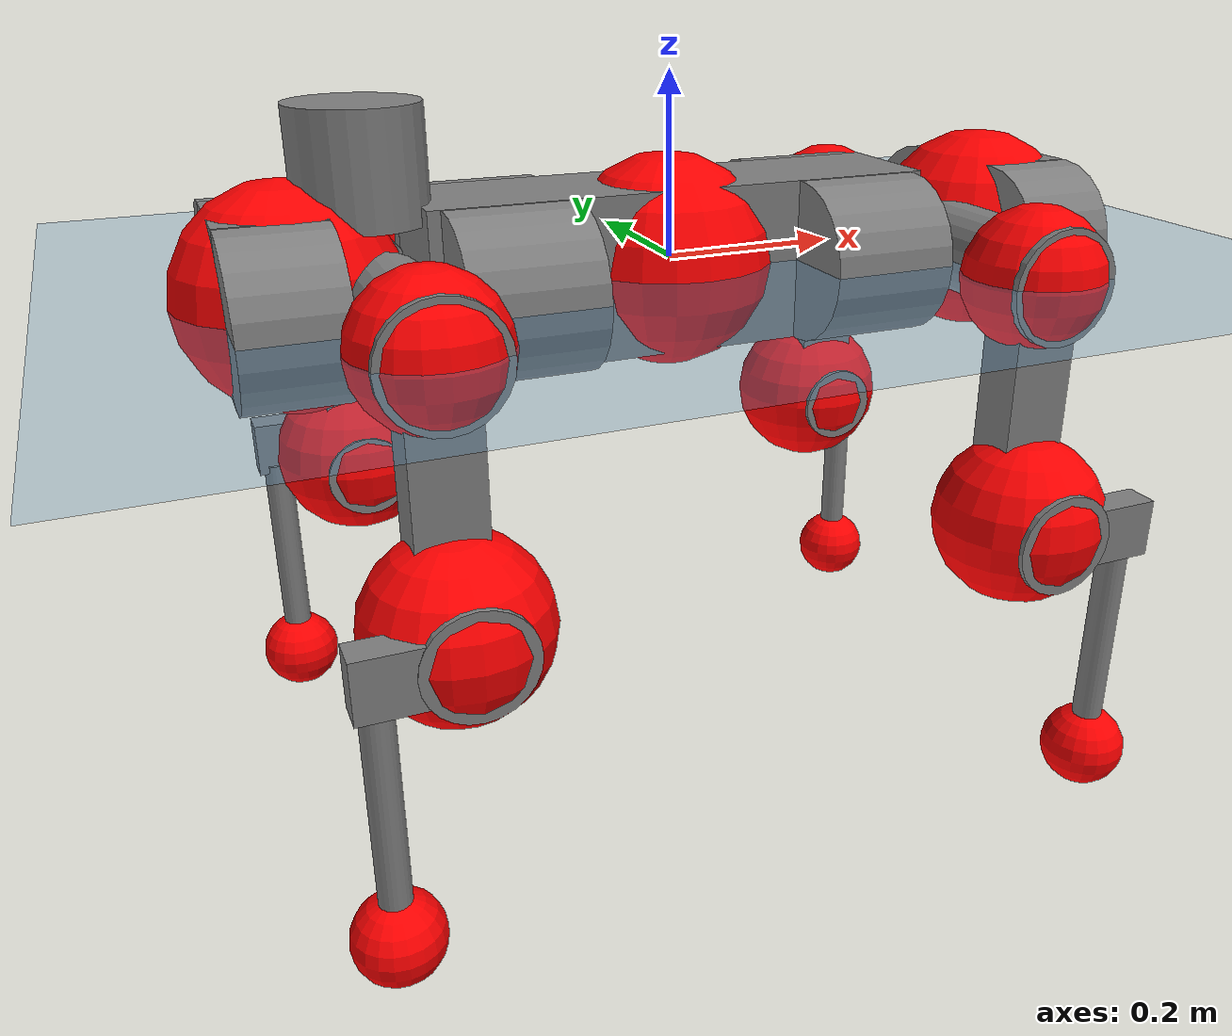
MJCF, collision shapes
<mujoco model="anymal_c">
  <compiler angle="radian" assetdir="assets" balanceinertia="true" inertiafromgeom="false"/>

  <option timestep="0.005" density="1.2" viscosity="2e-05"/>

  <size nkey="1"/>

  <visual>
    <quality shadowsize="8192"/>
    <map shadowclip="0.5"/>
  </visual>

  <default>
    <default class="/">
      <material specular="0" shininess="0.25"/>
      <geom contype="0" conaffinity="0" group="1" solref="-1000 -80"/>
      <site size="0.01 0.005 0.005" group="5"/>
      <general forcelimited="true" forcerange="-80 80" biastype="affine" gainprm="80" biasprm="0 -80 -2"/>
      <default class="anymal_c">
        <joint armature="0.01" damping="0.01" frictionloss="0.1"/>
        <default class="visual">
          <geom type="mesh" group="2"/>
          <default class="visual_zflip"/>
        </default>
        <default class="collision">
          <geom type="cylinder" group="3"/>
          <default class="foot">
            <geom size="0.03 0 0" type="sphere" condim="6" priority="1" friction="0.8 0.02 0.01" solimp="0.015 1 0.03"/>
          </default>
        </default>
      </default>
      <default class="reward_collision_sphere">
        <geom group="5" rgba="1 0 0 1"/>
      </default>
    </default>
  </default>

  <asset>
    <texture type="skybox" colorspace="auto" name="//unnamed_texture_0" builtin="gradient" rgb1="0.95 0.95 0.95" rgb2="0.95 0.95 0.95" width="100" height="600"/>
    <texture type="2d" colorspace="auto" name="texplane" builtin="checker" rgb1="0.345 0.575 0.748" rgb2="0.345 0.575 0.748" markrgb="1 1 1" width="512" height="512"/>
    <texture type="2d" colorspace="linear" name="base" file="base.png"/>
    <texture type="2d" colorspace="linear" name="top_shell" file="top_shell.png"/>
    <texture type="2d" colorspace="linear" name="bottom_shell" file="bottom_shell.png"/>
    <texture type="2d" colorspace="linear" name="remote" file="remote.png"/>
    <texture type="2d" colorspace="linear" name="hatch" file="hatch.png"/>
    <texture type="2d" colorspace="linear" name="handle" file="handle.png"/>
    <texture type="2d" colorspace="linear" name="face" file="face.png"/>
    <texture type="2d" colorspace="linear" name="battery" file="battery.png"/>
    <texture type="2d" colorspace="linear" name="lidar_cage" file="lidar_cage.png"/>
    <texture type="2d" colorspace="linear" name="depth_camera" file="depth_camera.png"/>
    <texture type="2d" colorspace="linear" name="wide_angle_camera" file="wide_angle_camera.png"/>
    <texture type="2d" colorspace="linear" name="lidar" file="lidar.png"/>
    <texture type="2d" colorspace="linear" name="drive" file="drive.png"/>
    <texture type="2d" colorspace="linear" name="hip_l" file="hip_l.png"/>
    <texture type="2d" colorspace="linear" name="shank_l" file="shank_l.png"/>
    <texture type="2d" colorspace="linear" name="foot" file="foot.png"/>
    <texture type="2d" colorspace="linear" name="thigh" file="thigh.png"/>
    <texture type="2d" colorspace="linear" name="shank_r" file="shank_r.png"/>
    <texture type="2d" colorspace="linear" name="hip_r" file="hip_r.png"/>
    <material name="MatPlane" class="/" texture="texplane" texuniform="true" texrepeat="2 2" specular="0.9" shininess="0.5"/>
    <material name="black_plastic" class="/" rgba="0.007 0.007 0.007 1"/>
    <material name="green" class="/" rgba="0.052 0.178 0.033 1"/>
    <material name="red" class="/" rgba="0.178 0.006 0.005 1"/>
    <material name="yellow" class="/" rgba="0.178 0.119 0.006 1"/>
    <material name="lwl" class="/" rgba="0.8 0.8 0.8 1"/>
    <material name="base" class="/" texture="base"/>
    <material name="top_shell" class="/" texture="top_shell"/>
    <material name="bottom_shell" class="/" texture="bottom_shell"/>
    <material name="hip_l" class="/" texture="hip_l"/>
    <material name="thigh" class="/" texture="thigh"/>
    <material name="shank_l" class="/" texture="shank_l"/>
    <material name="foot" class="/" texture="foot"/>
    <material name="hip_r" class="/" texture="hip_r"/>
    <material name="shank" class="/" texture="shank_r"/>
    <material name="hatch" class="/" texture="hatch"/>
    <material name="remote" class="/" texture="remote"/>
    <material name="handle" class="/" texture="handle"/>
    <material name="face" class="/" texture="face"/>
    <material name="depth_camera" class="/" texture="depth_camera"/>
    <material name="wide_angle_camera" class="/" texture="wide_angle_camera"/>
    <material name="battery" class="/" texture="battery"/>
    <material name="lidar_cage" class="/" texture="lidar_cage"/>
    <material name="lidar" class="/" texture="lidar"/>
    <material name="drive" class="/" texture="drive"/>
    <mesh name="base_0" class="/" file="base_0.obj"/>
    <mesh name="base_1" class="/" file="base_1.obj"/>
    <mesh name="base_2" class="/" file="base_2.obj"/>
    <mesh name="base_3" class="/" file="base_3.obj"/>
    <mesh name="base_4" class="/" file="base_4.obj"/>
    <mesh name="base_5" class="/" file="base_5.obj"/>
    <mesh name="top_shell" class="/" file="top_shell.obj"/>
    <mesh name="bottom_shell" class="/" file="bottom_shell.obj"/>
    <mesh name="remote" class="/" file="remote.obj"/>
    <mesh name="handle" class="/" file="handle.obj"/>
    <mesh name="face" class="/" file="face.obj"/>
    <mesh name="wide_angle_camera" class="/" file="wide_angle_camera.obj"/>
    <mesh name="depth_camera" class="/" file="depth_camera.obj"/>
    <mesh name="battery" class="/" file="battery.obj"/>
    <mesh name="lidar_cage" class="/" file="lidar_cage.obj"/>
    <mesh name="lidar" class="/" file="lidar.obj"/>
    <mesh name="drive" class="/" file="drive.obj"/>
    <mesh name="hip_l" class="/" file="hip_l.obj"/>
    <mesh name="thigh" class="/" file="thigh.obj"/>
    <mesh name="shank_l" class="/" file="shank_l.obj"/>
    <mesh name="foot" class="/" file="foot.obj"/>
    <mesh name="hip_r" class="/" file="hip_r.obj"/>
    <mesh name="hatch" class="/" file="hatch.obj"/>
    <mesh name="shank_r" class="/" file="shank_r.obj"/>
  </asset>

  <worldbody>
    <geom name="floor" class="/" size="100 100 0.125" type="plane" group="0" material="MatPlane"/>
    <light name="toplight_shadow" class="/" pos="0 0 5" dir="0.0990148 0.0990148 -0.990148" type="directional" ambient="0.04 0.04 0.04" diffuse="0.55 0.55 0.55" specular="0.12 0.12 0.12"/>
    <light name="toplight_fill" class="/" pos="0 0 5" dir="0.0990148 0.0990148 -0.990148" type="directional" castshadow="false" ambient="0.04 0.04 0.04" diffuse="0.3 0.3 0.3" specular="0.08 0.08 0.08"/>
    <body name="trunk" childclass="anymal_c" pos="-0.00309075 -0.000207477 -0.00226089" quat="1 0.000542417 0.000739971 0.000158255">
      <inertial pos="0.00471401 0.00205696 0.0436737" quat="0.493878 0.496395 0.507145 0.502475" mass="19.113" diaginertia="0.415446 0.882202 0.178034"/>
      <joint name="//unnamed_joint_0" type="free" armature="0" damping="0" frictionloss="0"/>
      <geom name="//unnamed_geom_1" class="visual" material="green" mesh="base_0"/>
      <geom name="//unnamed_geom_2" class="visual" material="yellow" mesh="base_1"/>
      <geom name="//unnamed_geom_3" class="visual" material="red" mesh="base_2"/>
      <geom name="//unnamed_geom_4" class="visual" material="black_plastic" mesh="base_3"/>
      <geom name="//unnamed_geom_5" class="visual" material="lwl" mesh="base_4"/>
      <geom name="//unnamed_geom_6" class="visual" material="base" mesh="base_5"/>
      <geom name="trunk_1" class="collision" size="0.283403 0.0684077 0.0879528" type="box"/>
      <geom name="trunk_2" class="collision" size="0.0879528 0.0708509" pos="0.198633 0.0747576 0" quat="0.707107 0 0.707107 0"/>
      <geom name="trunk_3" class="collision" size="0.0879528 0.0708509" pos="-0.198633 0.0747576 0" quat="0.707107 0 0.707107 0"/>
      <geom name="trunk_4" class="collision" size="0.0879528 0.0708509" pos="0.198633 -0.0747576 0" quat="0.707107 0 0.707107 0"/>
      <geom name="trunk_5" class="collision" size="0.0879528 0.0708509" pos="-0.198633 -0.0747576 0" quat="0.707107 0 0.707107 0"/>
      <geom name="//unnamed_geom_12" class="visual" material="top_shell" mesh="top_shell"/>
      <geom name="//unnamed_geom_13" class="visual" material="bottom_shell" mesh="bottom_shell"/>
      <geom name="//unnamed_geom_14" class="visual" material="remote" mesh="remote"/>
      <geom name="//unnamed_geom_15" class="visual" material="handle" mesh="handle"/>
      <geom name="//unnamed_geom_16" class="visual" pos="0.378544 0 0" quat="1 0 0 0" material="face" mesh="face"/>
      <geom name="trunk_6" class="collision" size="0.0537489 0.0684077 0.0879528" pos="0.428773 0 0" type="box"/>
      <geom name="//unnamed_geom_18" class="collision" size="0.0879528 0.0537489" pos="0.428773 0.0747576 0" quat="0.707107 0 0.707107 0"/>
      <geom name="//unnamed_geom_19" class="collision" size="0.0879528 0.0537489" pos="0.428773 -0.0747576 0" quat="0.707107 0 0.707107 0"/>
      <geom name="//unnamed_geom_20" class="visual" pos="0.421605 0 -0.0280391" quat="0.965926 0 0.258819 0" material="depth_camera" mesh="depth_camera"/>
      <geom name="//unnamed_geom_21" class="visual" pos="0.468499 0 0.0142296" material="wide_angle_camera" mesh="wide_angle_camera"/>
      <geom name="//unnamed_geom_22" class="visual_zflip" pos="-0.378544 0 0" quat="0 0 0 1" material="face" mesh="face"/>
      <geom name="trunk_7" class="collision" size="0.0537489 0.0684077 0.0879528" pos="-0.428773 0 0" quat="0 0 0 1" type="box"/>
      <geom name="//unnamed_geom_24" class="collision" size="0.0879528 0.0537489" pos="-0.428773 -0.0747576 0" quat="0 -0.707107 0 0.707107"/>
      <geom name="//unnamed_geom_25" class="collision" size="0.0879528 0.0537489" pos="-0.428773 0.0747576 0" quat="0 -0.707107 0 0.707107"/>
      <geom name="//unnamed_geom_26" class="visual" pos="-0.421605 0 -0.0280391" quat="0 -0.258819 0 0.965926" material="depth_camera" mesh="depth_camera"/>
      <geom name="//unnamed_geom_27" class="visual_zflip" pos="-0.468499 0 0.0142296" quat="0 0 0 1" material="wide_angle_camera" mesh="wide_angle_camera"/>
      <geom name="//unnamed_geom_28" class="visual" material="battery" mesh="battery"/>
      <geom name="//unnamed_geom_29" class="visual" pos="0 0.0836883 0.0273298" quat="0.683013 -0.183013 0.183013 0.683013" material="depth_camera" mesh="depth_camera"/>
      <geom name="//unnamed_geom_30" class="visual" pos="0 -0.0836883 0.0273298" quat="0.683013 0.183013 0.183013 -0.683013" material="depth_camera" mesh="depth_camera"/>
      <geom name="//unnamed_geom_31" class="visual" pos="-0.332425 0 0.0698647" quat="1 0 0 0" material="lidar_cage" mesh="lidar_cage"/>
      <geom name="trunk_8" class="collision" size="0.0684077 0.0586352" pos="-0.332425 0 0.126897"/>
      <geom name="//unnamed_geom_33" class="visual" pos="-0.332425 6.07819e-05 0.135167" quat="0.707107 0 0 -0.707107" material="lidar" mesh="lidar"/>
      <geom name="//unnamed_geom_34" class="visual" pos="0.273885 0.111027 2.02561e-09" quat="0.258819 0.965926 0 0" material="drive" mesh="drive"/>
      <geom name="//unnamed_geom_35" class="visual" pos="0.273885 -0.111027 -2.02561e-09" quat="0.258819 -0.965926 0 0" material="drive" mesh="drive"/>
      <geom name="//unnamed_geom_36" class="visual" pos="-0.273885 0.111027 -2.02561e-09" quat="0 0 0.965926 -0.258819" material="drive" mesh="drive"/>
      <geom name="//unnamed_geom_37" class="visual" pos="-0.273885 -0.111027 2.02561e-09" quat="0 0 -0.965926 -0.258819" material="drive" mesh="drive"/>
      <geom name="//unnamed_geom_38" class="visual" pos="0.105938 0 0.0693894" quat="1 0 0 0" material="hatch" mesh="hatch"/>
      <geom name="//unnamed_geom_39" class="reward_collision_sphere" size="0.11727"/>
      <geom name="//unnamed_geom_40" class="reward_collision_sphere" size="0.11727" pos="0.410964 0 0"/>
      <geom name="//unnamed_geom_41" class="reward_collision_sphere" size="0.11727" pos="-0.410964 0 0"/>
      <site name="imu" pos="0.224863 0.0181749 0.0365044" size="0.00977253"/>
      <camera name="track" pos="0 -2.13593 0" quat="0.707107 0.707107 0 0" mode="trackcom"/>
      <camera name="ego_camera" pos="0.410964 0 -0.0380216" quat="-0.5 -0.5 0.5 0.5"/>
      <body name="LF_HIP" pos="0.27434 0.108941 0.00175363" quat="0.259467 0.965752 0.000201009 -0.00100637">
        <inertial pos="0.0543852 -0.0166191 -0.00922995" quat="-0.125119 0.709888 -0.132452 0.680339" mass="2.59581" diaginertia="0.00367809 0.00721102 0.00255537"/>
        <joint name="LF_HAA" pos="0 0 0" axis="0.999904 -0.0134818 0.0032385" range="-0.7728 0.462543" armature="0.0100147" damping="0.0210892" frictionloss="0.0981071"/>
        <geom name="//unnamed_geom_42" class="visual" pos="0 0.000119157 -1.95715e-05" quat="0.258819 -0.965926 0 0" material="hip_l" mesh="hip_l"/>
        <geom name="//unnamed_geom_43" class="visual" pos="0.0547039 -0.0682808 -0.0385534" quat="0.183013 -0.683013 0.683013 0.183013" material="drive" mesh="drive"/>
        <geom name="//unnamed_geom_44" class="collision" size="0.0488627 0.0684077" pos="0.0547039 -0.0127727 -0.00656348" quat="-0.353553 -0.612372 0.612372 -0.353553"/>
        <body name="LF_THIGH" pos="0.0571059 -0.0784806 -0.0376952" quat="0.183247 -0.683093 0.682827 0.18317">
          <inertial pos="0.0288388 -0.00112972 -0.231849" quat="0.993242 -0.00556294 -0.0800288 0.0838678" mass="2.84774" diaginertia="0.019621 0.0414336 0.00308893"/>
          <joint name="LF_HFE" pos="0 0 0" axis="0.999944 -0.00477114 0.00949633" stiffness="0.0165124" range="-3.0991 3.13415" armature="0.00857797" damping="0.00234468" frictionloss="0.0847321"/>
          <geom name="//unnamed_geom_45" class="visual" pos="-0.00307815 -4.85044e-06 0" quat="0.707107 0 0 -0.707107" material="thigh" mesh="thigh"/>
          <geom name="//unnamed_geom_46" class="collision" size="0.0635215 0.0390901" pos="0.0365302 0 0" quat="0.5 0.5 -0.5 -0.5"/>
          <geom name="//unnamed_geom_47" class="collision" size="0.036647 0.0293176 0.1381" pos="0.0273976 0 -0.134325" quat="0.707107 0 0 -0.707107" type="box"/>
          <geom name="//unnamed_geom_48" class="visual" pos="0.0915994 0 -0.270904" quat="1 0 0 0" material="drive" mesh="drive"/>
          <geom name="//unnamed_geom_49" class="collision" size="0.0488627 0.0684077" pos="0.0276716 0 -0.270904" quat="0.707107 0 0.707107 0"/>
          <geom name="//unnamed_geom_50" class="reward_collision_sphere" size="0.0781803" pos="0.0228314 0 0"/>
          <body name="LF_SHANK" pos="0.0933024 0.00163511 -0.271408" quat="1 0.000609796 0.000216375 -0.000249833">
            <inertial pos="0.005414 -0.0646453 -0.075719" quat="0.99203 -0.124704 -0.00557752 -0.0171369" mass="0.546853" diaginertia="0.00606175 0.0124717 0.000859452"/>
            <joint name="LF_KFE" pos="0 0 0" axis="0.999915 -0.000916864 0.0130436" stiffness="0.00486946" range="-3.10571 3.13706" armature="0.0106916" damping="0.0085746" frictionloss="0.107382"/>
            <geom name="//unnamed_geom_51" class="visual" pos="-0.00100372 -0.00535187 0" quat="0.707107 0 0 -0.707107" material="shank_l" mesh="shank_l"/>
            <geom name="LF_kfe_act" class="collision" size="0.0586352 0.0195451" pos="0.0182651 0 0" quat="0.5 0.5 -0.5 -0.5"/>
            <geom name="//unnamed_geom_53" class="collision" size="0.0561911 0.0329823 0.0185678" pos="0.0182651 -0.061407 0" quat="0.5 0.5 -0.5 -0.5" type="box"/>
            <geom name="//unnamed_geom_54" class="visual" pos="0.0119182 -0.0956523 -0.321254" quat="0.382683 0 0 -0.92388" material="foot" mesh="foot"/>
            <geom name="LF_calf" class="collision" size="0.0171019 0.138039" pos="0.011918 -0.0939276 -0.160627" quat="0.707107 0 0 -0.707107"/>
            <geom name="LF_foot" class="foot" size="0.0225939" pos="0.011918 -0.0939276 -0.299867" quat="0.707107 0 0 -0.707107"/>
            <geom name="//unnamed_geom_57" class="reward_collision_sphere" size="0.0977253" pos="-0.0456627 0 0"/>
            <geom name="//unnamed_geom_58" class="reward_collision_sphere" size="0.0488627" pos="0.011918 -0.0939276 -0.299867"/>
            <site name="LF_foot" class="foot" pos="0.011918 -0.0939276 -0.299867" quat="0.707107 0 0 -0.707107" size="0.00977253"/>
          </body>
        </body>
      </body>
      <body name="RF_HIP" pos="0.276332 -0.110455 0.00198085" quat="0.258844 -0.965919 -7.76816e-06 -7.00073e-06">
        <inertial pos="0.0538965 0.0176496 -0.00781692" quat="0.136392 0.678716 0.130617 0.709705" mass="2.61395" diaginertia="0.00362848 0.00667003 0.00246156"/>
        <joint name="RF_HAA" pos="0 0 0" axis="0.999963 -0.00159448 -0.00847065" range="-0.440064 0.730459" armature="0.0109747" damping="0.0128236" frictionloss="0.101361"/>
        <geom name="//unnamed_geom_59" class="visual" pos="0 -0.000119156 -1.95714e-05" quat="0.258819 0.965926 0 0" material="hip_r" mesh="hip_r"/>
        <geom name="//unnamed_geom_60" class="visual" pos="0.0547039 0.0682808 -0.0385534" quat="0.183013 0.683013 0.683013 -0.183013" material="drive" mesh="drive"/>
        <geom name="//unnamed_geom_61" class="collision" size="0.0488627 0.0684077" pos="0.0547039 0.0127727 -0.00656348" quat="-0.353553 0.612372 0.612372 0.353553"/>
        <body name="RF_THIGH" pos="0.0546024 0.0805809 -0.0408821" quat="0.183001 0.683153 0.682884 -0.182979">
          <inertial pos="0.0300086 -0.000148494 -0.233938" quat="0.992727 -0.00598838 -0.0767841 0.092533" mass="2.83394" diaginertia="0.0185404 0.0390305 0.00313572"/>
          <joint name="RF_HFE" pos="0 0 0" axis="0.999991 0.00415524 -0.0006222" range="-3.17406 3.13457" armature="0.00961002" damping="0.00167629" frictionloss="0.109478"/>
          <geom name="//unnamed_geom_62" class="visual" pos="-0.00307815 -4.85044e-06 0" quat="0.707107 0 0 -0.707107" material="thigh" mesh="thigh"/>
          <geom name="//unnamed_geom_63" class="collision" size="0.0635215 0.0390901" pos="0.0365302 0 0" quat="0.5 0.5 0.5 0.5"/>
          <geom name="//unnamed_geom_64" class="collision" size="0.036647 0.0293176 0.1381" pos="0.0273976 0 -0.134325" quat="0.707107 0 0 0.707107" type="box"/>
          <geom name="//unnamed_geom_65" class="visual" pos="0.0915994 0 -0.270904" quat="1 0 0 0" material="drive" mesh="drive"/>
          <geom name="//unnamed_geom_66" class="collision" size="0.0488627 0.0684077" pos="0.0276716 0 -0.270904" quat="0.707107 0 0.707107 0"/>
          <geom name="//unnamed_geom_67" class="reward_collision_sphere" size="0.0781803" pos="0.0228314 0 0"/>
          <body name="RF_SHANK" pos="0.091025 0.000284 -0.273792" quat="1 8.88345e-05 -2.29197e-05 3.39152e-05">
            <inertial pos="0.00580899 0.0654491 -0.0773501" quat="0.993702 0.109548 -0.000235201 0.0235538" mass="0.553154" diaginertia="0.0064358 0.0128317 0.000865049"/>
            <joint name="RF_KFE" pos="0 0 0" axis="0.99993 -0.00762826 -0.0090314" stiffness="0.00145478" range="-3.1163 3.15234" armature="0.00844647" damping="0.00802439" frictionloss="0.0852367"/>
            <geom name="//unnamed_geom_68" class="visual" pos="-0.00100371 0.00535186 0" quat="0.707107 0 0 0.707107" material="shank" mesh="shank_r"/>
            <geom name="RF_kfe_act" class="collision" size="0.0586352 0.0195451" pos="0.0182651 0 0" quat="0.5 0.5 0.5 0.5"/>
            <geom name="//unnamed_geom_70" class="collision" size="0.0561911 0.0329823 0.0185678" pos="0.0182651 0.061407 0" quat="0.5 0.5 0.5 0.5" type="box"/>
            <geom name="//unnamed_geom_71" class="visual" pos="0.0119177 0.0956523 -0.321254" quat="0.382683 0 0 0.92388" material="foot" mesh="foot"/>
            <geom name="RF_calf" class="collision" size="0.0171019 0.138039" pos="0.011918 0.0939276 -0.160627" quat="0.707107 0 0 0.707107"/>
            <geom name="RF_foot" class="foot" size="0.0246877" pos="0.011918 0.0939276 -0.299867" quat="0.707107 0 0 0.707107"/>
            <geom name="//unnamed_geom_74" class="reward_collision_sphere" size="0.0977253" pos="-0.0456627 0 0"/>
            <geom name="//unnamed_geom_75" class="reward_collision_sphere" size="0.0488627" pos="0.011918 0.0939276 -0.299867"/>
            <site name="RF_foot" class="foot" pos="0.011918 0.0939276 -0.299867" quat="0.707107 0 0 0.707107" size="0.00977253"/>
          </body>
        </body>
      </body>
      <body name="LH_HIP" pos="-0.272298 0.111593 -0.000319846" quat="-5.08387e-05 -0.000439413 0.965776 -0.259376">
        <inertial pos="0.0545103 0.0139689 -0.0083011" quat="0.119495 0.676389 0.131515 0.714789" mass="2.60052" diaginertia="0.00385829 0.00710189 0.00257494"/>
        <joint name="LH_HAA" pos="0 0 0" axis="0.999982 -0.00598928 -0.000419983" stiffness="0.00187124" range="-0.527071 0.691387" armature="0.00996115" damping="0" frictionloss="0.09133"/>
        <geom name="//unnamed_geom_76" class="visual" pos="0 -0.000119156 -1.95714e-05" quat="-0.258819 -0.965926 0 0" material="hip_r" mesh="hip_r"/>
        <geom name="//unnamed_geom_77" class="visual" pos="0.0547039 0.0682808 -0.0385534" quat="0.183013 0.683013 0.683013 -0.183013" material="drive" mesh="drive"/>
        <geom name="//unnamed_geom_78" class="collision" size="0.0488627 0.0684077" pos="0.0547039 0.0127727 -0.00656348" quat="-0.353553 0.612372 0.612372 0.353553"/>
        <body name="LH_THIGH" pos="0.0529054 0.0787639 -0.0411903" quat="0.182406 0.682945 0.682983 -0.183979">
          <inertial pos="0.0285428 -0.000456117 -0.231418" quat="0.99312 -0.00513144 -0.0687736 0.0946427" mass="2.8717" diaginertia="0.0197428 0.0438842 0.00339792"/>
          <joint name="LH_HFE" pos="0 0 0" axis="0.999984 0.00292605 -0.0048968" range="-3.14598 3.1439" armature="0.00985384" damping="0" frictionloss="0.0971148"/>
          <geom name="//unnamed_geom_79" class="visual" pos="-0.00307815 -4.85044e-06 0" quat="0.707107 0 0 -0.707107" material="thigh" mesh="thigh"/>
          <geom name="//unnamed_geom_80" class="collision" size="0.0635215 0.0390901" pos="0.0365302 0 0" quat="0.5 0.5 -0.5 -0.5"/>
          <geom name="//unnamed_geom_81" class="collision" size="0.036647 0.0293176 0.1381" pos="0.0273976 0 -0.134325" quat="0.707107 0 0 -0.707107" type="box"/>
          <geom name="//unnamed_geom_82" class="visual" pos="0.0915994 0 -0.270904" quat="1 0 0 0" material="drive" mesh="drive"/>
          <geom name="//unnamed_geom_83" class="collision" size="0.0488627 0.0684077" pos="0.0276716 0 -0.270904" quat="0.707107 0 0.707107 0"/>
          <geom name="//unnamed_geom_84" class="reward_collision_sphere" size="0.0781803" pos="0.0228314 0 0"/>
          <body name="LH_SHANK" pos="0.0918473 -0.00154185 -0.269174" quat="1 -0.00037154 0.000543566 -0.000421925">
            <inertial pos="0.00229489 0.0626565 -0.0765308" quat="0.992349 0.121593 0.00537465 0.0207393" mass="0.566895" diaginertia="0.00651891 0.0132476 0.000929621"/>
            <joint name="LH_KFE" pos="0 0 0" axis="0.999972 0.00119737 -0.00734342" stiffness="0.0139547" range="-3.14981 3.18717" armature="0.0105582" damping="0.0023038" frictionloss="0.0856686"/>
            <geom name="//unnamed_geom_85" class="visual" pos="-0.00100371 0.00535186 0" quat="-0.707107 0 0 -0.707107" material="shank" mesh="shank_r"/>
            <geom name="LH_kfe_act" class="collision" size="0.0586352 0.0195451" pos="0.0182651 0 0" quat="0.5 0.5 -0.5 -0.5"/>
            <geom name="//unnamed_geom_87" class="collision" size="0.0561911 0.0329823 0.0185678" pos="0.0182651 0.061407 0" quat="0.5 0.5 -0.5 -0.5" type="box"/>
            <geom name="//unnamed_geom_88" class="visual" pos="0.0119177 0.0956523 -0.321254" quat="-0.382683 0 0 -0.92388" material="foot" mesh="foot"/>
            <geom name="LH_calf" class="collision" size="0.0171019 0.138039" pos="0.011918 0.0939276 -0.160627" quat="0.707107 0 0 -0.707107"/>
            <geom name="LH_foot" class="foot" size="0.029108" pos="0.011918 0.0939276 -0.299867" quat="0.707107 0 0 -0.707107"/>
            <geom name="//unnamed_geom_91" class="reward_collision_sphere" size="0.0977253" pos="-0.0456627 0 0"/>
            <geom name="//unnamed_geom_92" class="reward_collision_sphere" size="0.0488627" pos="0.011918 0.0939276 -0.299867"/>
            <site name="LH_foot" class="foot" pos="0.011918 0.0939276 -0.299867" quat="0.707107 0 0 -0.707107" size="0.00977253"/>
          </body>
        </body>
      </body>
      <body name="RH_HIP" pos="-0.271282 -0.112459 0.00188824" quat="0.0010029 -0.000509935 -0.965923 -0.258826">
        <inertial pos="0.049204 -0.0160232 -0.00550156" quat="-0.128172 0.712027 -0.133087 0.677404" mass="2.60435" diaginertia="0.00376545 0.00689038 0.00253661"/>
        <joint name="RH_HAA" pos="0 0 0" axis="0.999901 -0.0115019 0.00812592" stiffness="0.000933163" range="-0.670293 0.530705" armature="0.00857694" damping="0.00644038" frictionloss="0.107987"/>
        <geom name="//unnamed_geom_93" class="visual" pos="0 0.000119157 -1.95715e-05" quat="-0.258819 0.965926 0 0" material="hip_l" mesh="hip_l"/>
        <geom name="//unnamed_geom_94" class="visual" pos="0.0547039 -0.0682808 -0.0385534" quat="-0.183013 0.683013 -0.683013 -0.183013" material="drive" mesh="drive"/>
        <geom name="//unnamed_geom_95" class="collision" size="0.0488627 0.0684077" pos="0.0547039 -0.0127727 -0.00656348" quat="0.353553 0.612372 -0.612372 0.353553"/>
        <body name="RH_THIGH" pos="0.0520915 -0.0752552 -0.0374799" quat="-0.182958 0.682948 -0.683081 -0.183056">
          <inertial pos="0.0273365 -0.000609802 -0.233215" quat="0.993535 -0.00297683 -0.0801845 0.0803092" mass="2.88797" diaginertia="0.0187184 0.0419896 0.00322875"/>
          <joint name="RH_HFE" pos="0 0 0" axis="0.999948 0.00576386 0.00845874" stiffness="0.00774221" range="-3.13211 3.12417" armature="0.00935743" damping="0.00291493" frictionloss="0.108164"/>
          <geom name="//unnamed_geom_96" class="visual" pos="-0.00307815 -4.85044e-06 0" quat="0.707107 0 0 -0.707107" material="thigh" mesh="thigh"/>
          <geom name="//unnamed_geom_97" class="collision" size="0.0635215 0.0390901" pos="0.0365302 0 0" quat="0.5 0.5 0.5 0.5"/>
          <geom name="//unnamed_geom_98" class="collision" size="0.036647 0.0293176 0.1381" pos="0.0273976 0 -0.134325" quat="0.707107 0 0 0.707107" type="box"/>
          <geom name="//unnamed_geom_99" class="visual" pos="0.0915994 0 -0.270904" quat="1 0 0 0" material="drive" mesh="drive"/>
          <geom name="//unnamed_geom_100" class="collision" size="0.0488627 0.0684077" pos="0.0276716 0 -0.270904" quat="0.707107 0 0.707107 0"/>
          <geom name="//unnamed_geom_101" class="reward_collision_sphere" size="0.0781803" pos="0.0228314 0 0"/>
          <body name="RH_SHANK" pos="0.0905465 0.00120781 -0.267648" quat="1 -0.000190652 -0.000180237 0.000144376">
            <inertial pos="0.0045605 -0.0637348 -0.0759411" quat="0.991854 -0.125046 3.38951e-05 -0.0242818" mass="0.547008" diaginertia="0.00666299 0.0126953 0.000863419"/>
            <joint name="RH_KFE" pos="0 0 0" axis="0.999983 -0.00145318 -0.00565582" stiffness="0.00192177" range="-3.17122 3.15198" armature="0.00847612" damping="0.00272372" frictionloss="0.0849158"/>
            <geom name="//unnamed_geom_102" class="visual" pos="-0.00100372 -0.00535187 0" quat="0.707107 0 0 -0.707107" material="shank_l" mesh="shank_l"/>
            <geom name="RH_kfe_act" class="collision" size="0.0586352 0.0195451" pos="0.0182651 0 0" quat="0.5 0.5 0.5 0.5"/>
            <geom name="//unnamed_geom_104" class="collision" size="0.0561911 0.0329823 0.0185678" pos="0.0182651 -0.061407 0" quat="0.5 0.5 0.5 0.5" type="box"/>
            <geom name="//unnamed_geom_105" class="visual" pos="0.0119182 -0.0956523 -0.321254" quat="0.382683 0 0 -0.92388" material="foot" mesh="foot"/>
            <geom name="RH_calf" class="collision" size="0.0171019 0.138039" pos="0.011918 -0.0939276 -0.160627" quat="0.707107 0 0 0.707107"/>
            <geom name="RH_foot" class="foot" size="0.0308005" pos="0.011918 -0.0939276 -0.299867" quat="0.707107 0 0 0.707107"/>
            <geom name="//unnamed_geom_108" class="reward_collision_sphere" size="0.0977253" pos="-0.0456627 0 0"/>
            <geom name="//unnamed_geom_109" class="reward_collision_sphere" size="0.0488627" pos="0.011918 -0.0939276 -0.299867"/>
            <site name="RH_foot" class="foot" pos="0.011918 -0.0939276 -0.299867" quat="0.707107 0 0 0.707107" size="0.00977253"/>
          </body>
        </body>
      </body>
    </body>
  </worldbody>

  <contact>
    <pair class="/" geom1="floor" geom2="LF_foot" name="//unnamed_contact_0"/>
    <pair class="/" geom1="floor" geom2="RF_foot" name="//unnamed_contact_1"/>
    <pair class="/" geom1="floor" geom2="LH_foot" name="//unnamed_contact_2"/>
    <pair class="/" geom1="floor" geom2="RH_foot" name="//unnamed_contact_3"/>
  </contact>

  <actuator>
    <general name="LF_HAA" class="/" joint="LF_HAA" forcerange="-80.1229 80.1229" gainprm="82.13" biasprm="0 -82.13 -2.0456"/>
    <general name="LF_HFE" class="/" joint="LF_HFE" forcerange="-72.4233 72.4233" gainprm="82.13" biasprm="0 -82.13 -2.0456"/>
    <general name="LF_KFE" class="/" joint="LF_KFE" forcerange="-76.2404 76.2404" gainprm="82.13" biasprm="0 -82.13 -2.0456"/>
    <general name="RF_HAA" class="/" joint="RF_HAA" forcerange="-81.3564 81.3564" gainprm="82.13" biasprm="0 -82.13 -2.0456"/>
    <general name="RF_HFE" class="/" joint="RF_HFE" forcerange="-85.3414 85.3414" gainprm="82.13" biasprm="0 -82.13 -2.0456"/>
    <general name="RF_KFE" class="/" joint="RF_KFE" forcerange="-79.3313 79.3313" gainprm="82.13" biasprm="0 -82.13 -2.0456"/>
    <general name="LH_HAA" class="/" joint="LH_HAA" forcerange="-71.6479 71.6479" gainprm="82.13" biasprm="0 -82.13 -2.0456"/>
    <general name="LH_HFE" class="/" joint="LH_HFE" forcerange="-72.4736 72.4736" gainprm="82.13" biasprm="0 -82.13 -2.0456"/>
    <general name="LH_KFE" class="/" joint="LH_KFE" forcerange="-84.6388 84.6388" gainprm="82.13" biasprm="0 -82.13 -2.0456"/>
    <general name="RH_HAA" class="/" joint="RH_HAA" forcerange="-75.6379 75.6379" gainprm="82.13" biasprm="0 -82.13 -2.0456"/>
    <general name="RH_HFE" class="/" joint="RH_HFE" forcerange="-72.8332 72.8332" gainprm="82.13" biasprm="0 -82.13 -2.0456"/>
    <general name="RH_KFE" class="/" joint="RH_KFE" forcerange="-82.9255 82.9255" gainprm="82.13" biasprm="0 -82.13 -2.0456"/>
  </actuator>

  <sensor>
    <gyro site="imu" name="imu_angular_velocity"/>
    <velocimeter site="imu" name="imu_linear_velocity"/>
    <framelinvel objtype="site" objname="LF_foot" name="LF_foot_global_linear_velocity"/>
    <framelinvel objtype="site" objname="RF_foot" name="RF_foot_global_linear_velocity"/>
    <framelinvel objtype="site" objname="LH_foot" name="LH_foot_global_linear_velocity"/>
    <framelinvel objtype="site" objname="RH_foot" name="RH_foot_global_linear_velocity"/>
  </sensor>

  <keyframe>
    <key name="home" qpos="0 0 0.55 1 0 0 0 0 0.4 -0.8 0 -0.4 0.8 0 -0.4 0.8 0 0.4 -0.8"/>
  </keyframe>
</mujoco>
